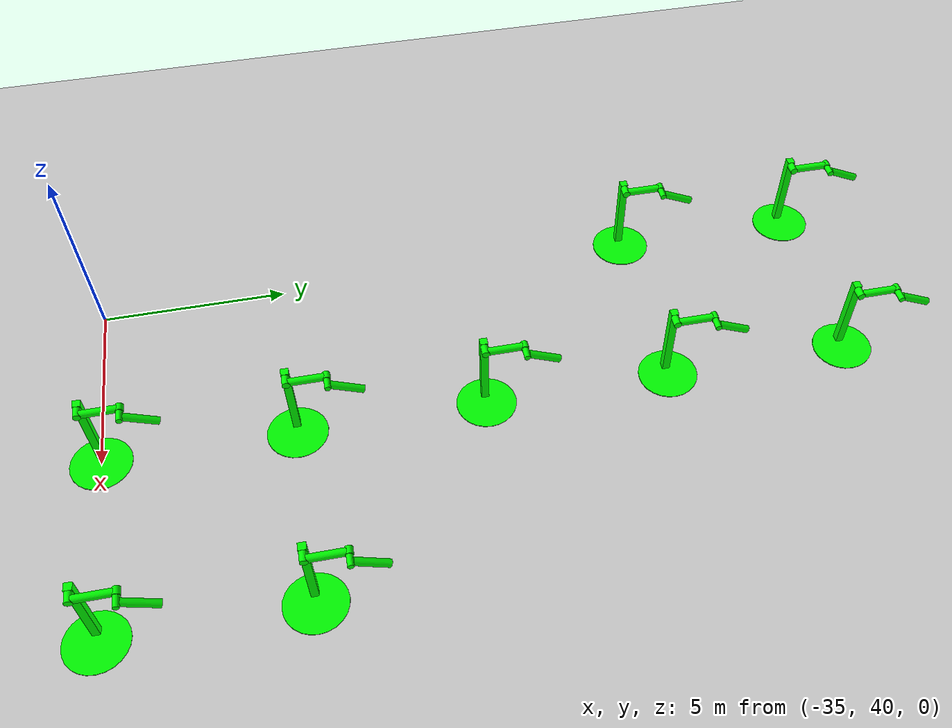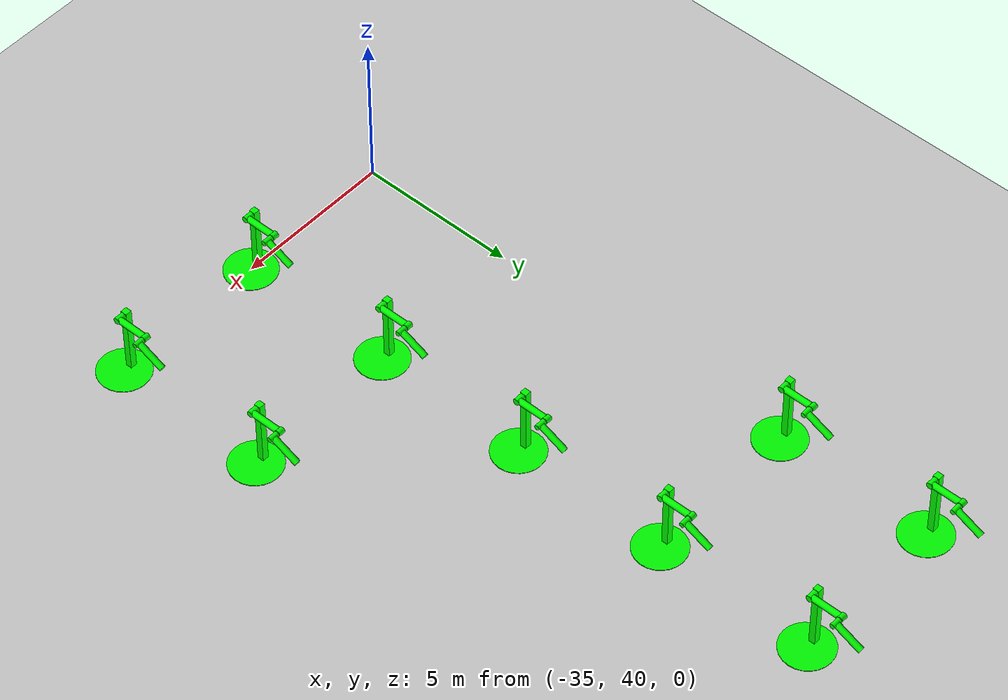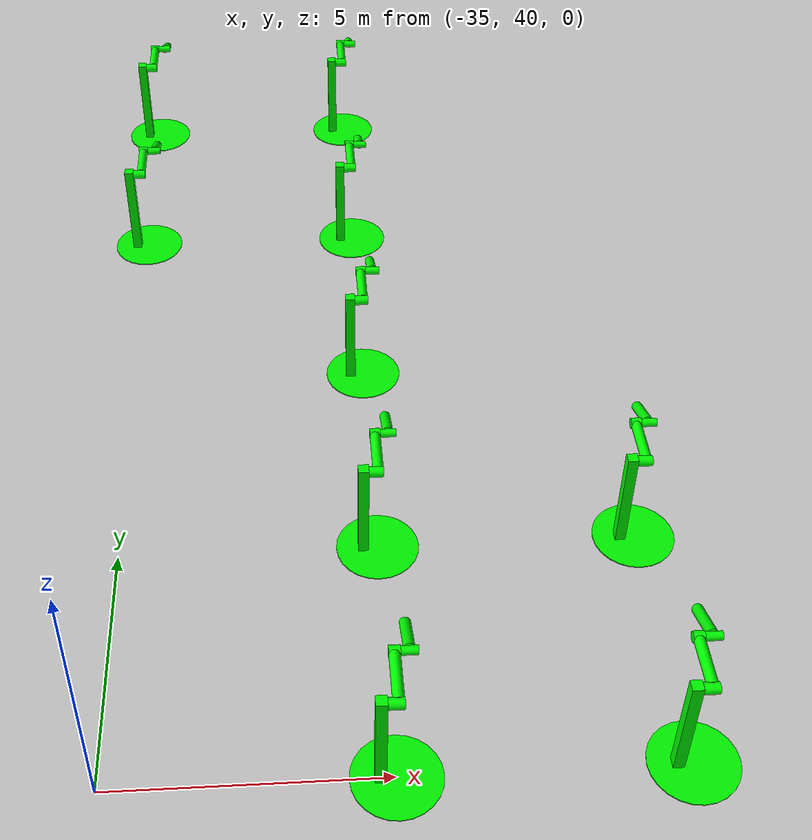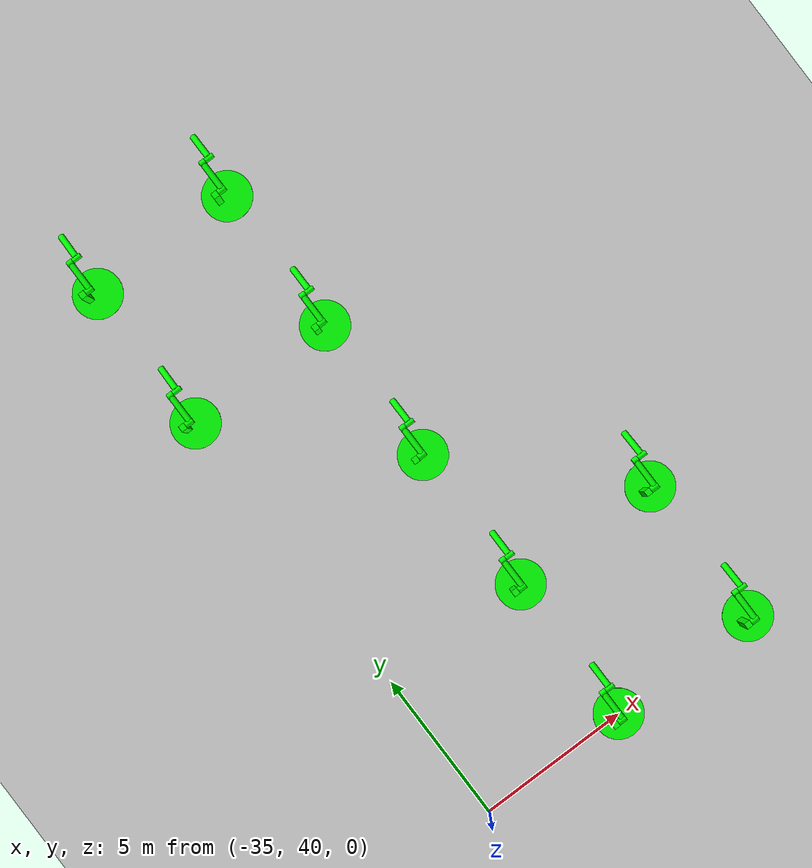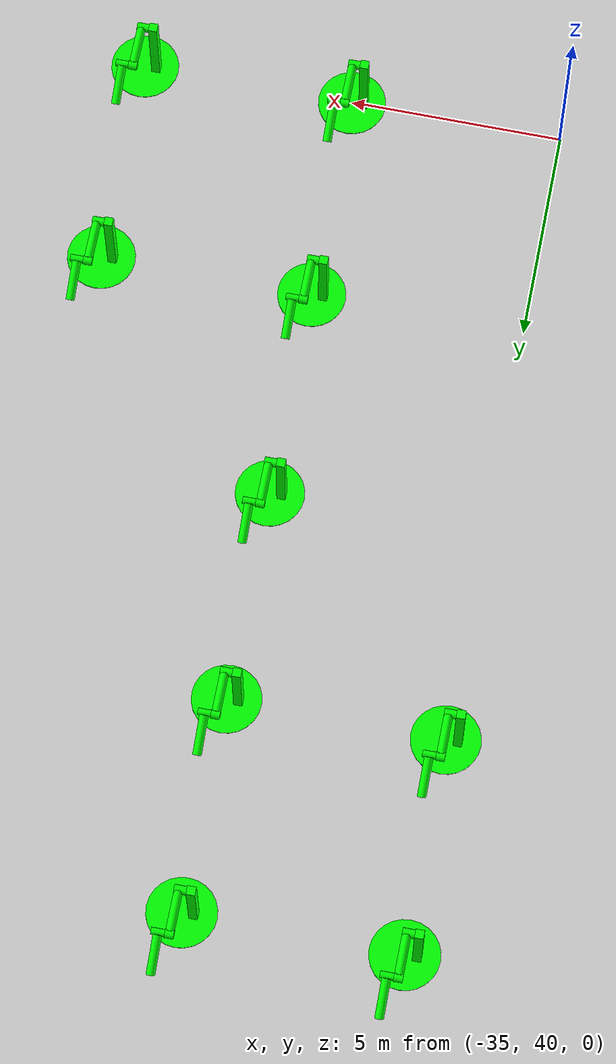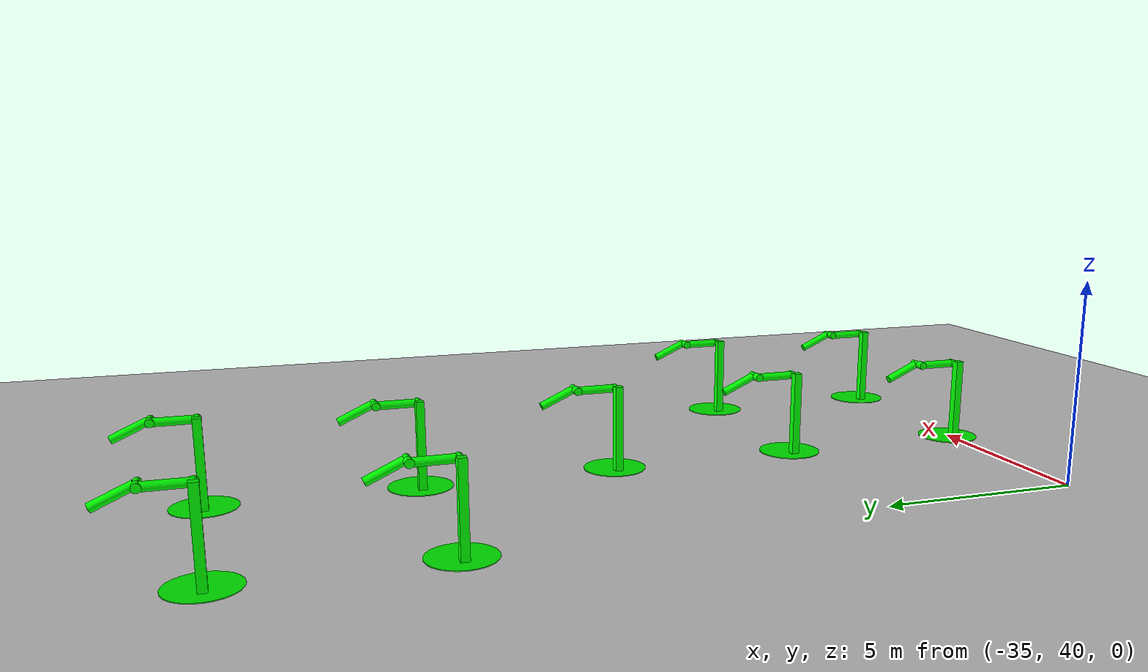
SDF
<sdf version="1.6">
 <world name="double_pendulums">
  <model name="ground_plane">
   <static>true</static>
   <link name="link">
    <collision name="collision">
     <geometry><plane><normal>0 0 1</normal><size>100 100</size></plane></geometry>
    </collision>
    <visual name="visual">
     <geometry><plane><normal>0 0 1</normal><size>100 100</size></plane></geometry>
     <material>
      <ambient>0.8 0.8 0.8 1</ambient>
      <diffuse>0.8 0.8 0.8 1</diffuse>
      <specular>0.8 0.8 0.8 1</specular>
     </material>
    </visual>
   </link>
  </model>
  <model name="dbl_pendulum_204">
   <pose>-30 40 0 0 0 0</pose>
   <link name="base">
    <inertial><mass>100</mass></inertial>
    <visual name="vis_plate_on_ground">
     <pose>0 0 0.01 0 0 0</pose>
     <geometry><cylinder><radius>0.8</radius><length>0.02</length></cylinder></geometry>
     <material><ambient>0 1 0 1</ambient><diffuse>0 1 0 1</diffuse><specular>0 1 0 1</specular></material>
    </visual>
    <visual name="vis_pole">
     <pose>-0.275 0 1.1 0 0 0</pose>
     <geometry><box><size>0.2 0.2 2.2</size></box></geometry>
     <material><ambient>0 1 0 1</ambient><diffuse>0 1 0 1</diffuse><specular>0 1 0 1</specular></material>
    </visual>
    <collision name="col_plate_on_ground">
     <pose>0 0 0.01 0 0 0</pose>
     <geometry><cylinder><radius>0.8</radius><length>0.02</length></cylinder></geometry>
    </collision>
    <collision name="col_pole">
     <pose>-0.275 0 1.1 0 0 0</pose>
     <geometry><box><size>0.2 0.2 2.2</size></box></geometry>
    </collision>
   </link>
   <link name="upper_link">
    <pose>0 0 2.1 -1.5708 0 0</pose>
    <inertial><pose>0 0 0.5 0 0 0</pose></inertial>
    <visual name="vis_upper_joint">
     <pose>-0.05 0 0 0 1.5708 0</pose>
     <geometry><cylinder><radius>0.1</radius><length>0.3</length></cylinder></geometry>
     <material><ambient>0 1 0 1</ambient><diffuse>0 1 0 1</diffuse><specular>0 1 0 1</specular></material>
    </visual>
    <visual name="vis_lower_joint">
     <pose>0 0 1.0 0 1.5708 0</pose>
     <geometry><cylinder><radius>0.1</radius><length>0.2</length></cylinder></geometry>
     <material><ambient>0 1 0 1</ambient><diffuse>0 1 0 1</diffuse><specular>0 1 0 1</specular></material>
    </visual>
    <visual name="vis_cylinder">
     <pose>0 0 0.5 0 0 0</pose>
     <geometry><cylinder><radius>0.1</radius><length>0.9</length></cylinder></geometry>
     <material><ambient>0 1 0 1</ambient><diffuse>0 1 0 1</diffuse><specular>0 1 0 1</specular></material>
    </visual>
    <collision name="col_upper_joint">
     <pose>-0.05 0 0 0 1.5708 0</pose>
     <geometry><cylinder><radius>0.1</radius><length>0.3</length></cylinder></geometry>
    </collision>
    <collision name="col_lower_joint">
     <pose>0 0 1.0 0 1.5708 0</pose>
     <geometry><cylinder><radius>0.1</radius><length>0.2</length></cylinder></geometry>
    </collision>
    <collision name="col_cylinder">
     <pose>0 0 0.5 0 0 0</pose>
     <geometry><cylinder><radius>0.1</radius><length>0.9</length></cylinder></geometry>
    </collision>
   </link>
   <link name="lower_link">
    <pose>0.25 1.0 2.1 -2 0 0</pose>
    <inertial><pose>0 0 0.5 0 0 0</pose></inertial>
    <visual name="vis_lower_joint">
     <pose>0 0 0 0 1.5708 0</pose>
     <geometry><cylinder><radius>0.08</radius><length>0.3</length></cylinder></geometry>
     <material><ambient>0 1 0 1</ambient><diffuse>0 1 0 1</diffuse><specular>0 1 0 1</specular></material>
    </visual>
    <visual name="vis_cylinder">
     <pose>0 0 0.5 0 0 0</pose>
     <geometry><cylinder><radius>0.1</radius><length>0.9</length></cylinder></geometry>
     <material><ambient>0 1 0 1</ambient><diffuse>0 1 0 1</diffuse><specular>0 1 0 1</specular></material>
    </visual>
    <collision name="col_lower_joint">
     <pose>0 0 0 0 1.5708 0</pose>
     <geometry><cylinder><radius>0.08</radius><length>0.3</length></cylinder></geometry>
    </collision>
    <collision name="col_cylinder">
     <pose>0 0 0.5 0 0 0</pose>
     <geometry><cylinder><radius>0.1</radius><length>0.9</length></cylinder></geometry>
    </collision>
   </link>
   <joint name="upper_joint" type="revolute">
    <parent>base</parent>
    <child>upper_link</child>
    <axis><xyz>1.0 0 0</xyz></axis>
   </joint>
   <joint name="lower_joint" type="revolute">
    <parent>upper_link</parent>
    <child>lower_link</child>
    <axis><xyz>1.0 0 0</xyz></axis>
   </joint>
  </model>
  <model name="dbl_pendulum_205">
   <pose>-25 40 0 0 0 0</pose>
   <link name="base">
    <inertial><mass>100</mass></inertial>
    <visual name="vis_plate_on_ground">
     <pose>0 0 0.01 0 0 0</pose>
     <geometry><cylinder><radius>0.8</radius><length>0.02</length></cylinder></geometry>
     <material><ambient>0 1 0 1</ambient><diffuse>0 1 0 1</diffuse><specular>0 1 0 1</specular></material>
    </visual>
    <visual name="vis_pole">
     <pose>-0.275 0 1.1 0 0 0</pose>
     <geometry><box><size>0.2 0.2 2.2</size></box></geometry>
     <material><ambient>0 1 0 1</ambient><diffuse>0 1 0 1</diffuse><specular>0 1 0 1</specular></material>
    </visual>
    <collision name="col_plate_on_ground">
     <pose>0 0 0.01 0 0 0</pose>
     <geometry><cylinder><radius>0.8</radius><length>0.02</length></cylinder></geometry>
    </collision>
    <collision name="col_pole">
     <pose>-0.275 0 1.1 0 0 0</pose>
     <geometry><box><size>0.2 0.2 2.2</size></box></geometry>
    </collision>
   </link>
   <link name="upper_link">
    <pose>0 0 2.1 -1.5708 0 0</pose>
    <inertial><pose>0 0 0.5 0 0 0</pose></inertial>
    <visual name="vis_upper_joint">
     <pose>-0.05 0 0 0 1.5708 0</pose>
     <geometry><cylinder><radius>0.1</radius><length>0.3</length></cylinder></geometry>
     <material><ambient>0 1 0 1</ambient><diffuse>0 1 0 1</diffuse><specular>0 1 0 1</specular></material>
    </visual>
    <visual name="vis_lower_joint">
     <pose>0 0 1.0 0 1.5708 0</pose>
     <geometry><cylinder><radius>0.1</radius><length>0.2</length></cylinder></geometry>
     <material><ambient>0 1 0 1</ambient><diffuse>0 1 0 1</diffuse><specular>0 1 0 1</specular></material>
    </visual>
    <visual name="vis_cylinder">
     <pose>0 0 0.5 0 0 0</pose>
     <geometry><cylinder><radius>0.1</radius><length>0.9</length></cylinder></geometry>
     <material><ambient>0 1 0 1</ambient><diffuse>0 1 0 1</diffuse><specular>0 1 0 1</specular></material>
    </visual>
    <collision name="col_upper_joint">
     <pose>-0.05 0 0 0 1.5708 0</pose>
     <geometry><cylinder><radius>0.1</radius><length>0.3</length></cylinder></geometry>
    </collision>
    <collision name="col_lower_joint">
     <pose>0 0 1.0 0 1.5708 0</pose>
     <geometry><cylinder><radius>0.1</radius><length>0.2</length></cylinder></geometry>
    </collision>
    <collision name="col_cylinder">
     <pose>0 0 0.5 0 0 0</pose>
     <geometry><cylinder><radius>0.1</radius><length>0.9</length></cylinder></geometry>
    </collision>
   </link>
   <link name="lower_link">
    <pose>0.25 1.0 2.1 -2 0 0</pose>
    <inertial><pose>0 0 0.5 0 0 0</pose></inertial>
    <visual name="vis_lower_joint">
     <pose>0 0 0 0 1.5708 0</pose>
     <geometry><cylinder><radius>0.08</radius><length>0.3</length></cylinder></geometry>
     <material><ambient>0 1 0 1</ambient><diffuse>0 1 0 1</diffuse><specular>0 1 0 1</specular></material>
    </visual>
    <visual name="vis_cylinder">
     <pose>0 0 0.5 0 0 0</pose>
     <geometry><cylinder><radius>0.1</radius><length>0.9</length></cylinder></geometry>
     <material><ambient>0 1 0 1</ambient><diffuse>0 1 0 1</diffuse><specular>0 1 0 1</specular></material>
    </visual>
    <collision name="col_lower_joint">
     <pose>0 0 0 0 1.5708 0</pose>
     <geometry><cylinder><radius>0.08</radius><length>0.3</length></cylinder></geometry>
    </collision>
    <collision name="col_cylinder">
     <pose>0 0 0.5 0 0 0</pose>
     <geometry><cylinder><radius>0.1</radius><length>0.9</length></cylinder></geometry>
    </collision>
   </link>
   <joint name="upper_joint" type="revolute">
    <parent>base</parent>
    <child>upper_link</child>
    <axis><xyz>1.0 0 0</xyz></axis>
   </joint>
   <joint name="lower_joint" type="revolute">
    <parent>upper_link</parent>
    <child>lower_link</child>
    <axis><xyz>1.0 0 0</xyz></axis>
   </joint>
  </model>
  <model name="dbl_pendulum_229">
   <pose>-30 45 0 0 0 0</pose>
   <link name="base">
    <inertial><mass>100</mass></inertial>
    <visual name="vis_plate_on_ground">
     <pose>0 0 0.01 0 0 0</pose>
     <geometry><cylinder><radius>0.8</radius><length>0.02</length></cylinder></geometry>
     <material><ambient>0 1 0 1</ambient><diffuse>0 1 0 1</diffuse><specular>0 1 0 1</specular></material>
    </visual>
    <visual name="vis_pole">
     <pose>-0.275 0 1.1 0 0 0</pose>
     <geometry><box><size>0.2 0.2 2.2</size></box></geometry>
     <material><ambient>0 1 0 1</ambient><diffuse>0 1 0 1</diffuse><specular>0 1 0 1</specular></material>
    </visual>
    <collision name="col_plate_on_ground">
     <pose>0 0 0.01 0 0 0</pose>
     <geometry><cylinder><radius>0.8</radius><length>0.02</length></cylinder></geometry>
    </collision>
    <collision name="col_pole">
     <pose>-0.275 0 1.1 0 0 0</pose>
     <geometry><box><size>0.2 0.2 2.2</size></box></geometry>
    </collision>
   </link>
   <link name="upper_link">
    <pose>0 0 2.1 -1.5708 0 0</pose>
    <inertial><pose>0 0 0.5 0 0 0</pose></inertial>
    <visual name="vis_upper_joint">
     <pose>-0.05 0 0 0 1.5708 0</pose>
     <geometry><cylinder><radius>0.1</radius><length>0.3</length></cylinder></geometry>
     <material><ambient>0 1 0 1</ambient><diffuse>0 1 0 1</diffuse><specular>0 1 0 1</specular></material>
    </visual>
    <visual name="vis_lower_joint">
     <pose>0 0 1.0 0 1.5708 0</pose>
     <geometry><cylinder><radius>0.1</radius><length>0.2</length></cylinder></geometry>
     <material><ambient>0 1 0 1</ambient><diffuse>0 1 0 1</diffuse><specular>0 1 0 1</specular></material>
    </visual>
    <visual name="vis_cylinder">
     <pose>0 0 0.5 0 0 0</pose>
     <geometry><cylinder><radius>0.1</radius><length>0.9</length></cylinder></geometry>
     <material><ambient>0 1 0 1</ambient><diffuse>0 1 0 1</diffuse><specular>0 1 0 1</specular></material>
    </visual>
    <collision name="col_upper_joint">
     <pose>-0.05 0 0 0 1.5708 0</pose>
     <geometry><cylinder><radius>0.1</radius><length>0.3</length></cylinder></geometry>
    </collision>
    <collision name="col_lower_joint">
     <pose>0 0 1.0 0 1.5708 0</pose>
     <geometry><cylinder><radius>0.1</radius><length>0.2</length></cylinder></geometry>
    </collision>
    <collision name="col_cylinder">
     <pose>0 0 0.5 0 0 0</pose>
     <geometry><cylinder><radius>0.1</radius><length>0.9</length></cylinder></geometry>
    </collision>
   </link>
   <link name="lower_link">
    <pose>0.25 1.0 2.1 -2 0 0</pose>
    <inertial><pose>0 0 0.5 0 0 0</pose></inertial>
    <visual name="vis_lower_joint">
     <pose>0 0 0 0 1.5708 0</pose>
     <geometry><cylinder><radius>0.08</radius><length>0.3</length></cylinder></geometry>
     <material><ambient>0 1 0 1</ambient><diffuse>0 1 0 1</diffuse><specular>0 1 0 1</specular></material>
    </visual>
    <visual name="vis_cylinder">
     <pose>0 0 0.5 0 0 0</pose>
     <geometry><cylinder><radius>0.1</radius><length>0.9</length></cylinder></geometry>
     <material><ambient>0 1 0 1</ambient><diffuse>0 1 0 1</diffuse><specular>0 1 0 1</specular></material>
    </visual>
    <collision name="col_lower_joint">
     <pose>0 0 0 0 1.5708 0</pose>
     <geometry><cylinder><radius>0.08</radius><length>0.3</length></cylinder></geometry>
    </collision>
    <collision name="col_cylinder">
     <pose>0 0 0.5 0 0 0</pose>
     <geometry><cylinder><radius>0.1</radius><length>0.9</length></cylinder></geometry>
    </collision>
   </link>
   <joint name="upper_joint" type="revolute">
    <parent>base</parent>
    <child>upper_link</child>
    <axis><xyz>1.0 0 0</xyz></axis>
   </joint>
   <joint name="lower_joint" type="revolute">
    <parent>upper_link</parent>
    <child>lower_link</child>
    <axis><xyz>1.0 0 0</xyz></axis>
   </joint>
  </model>
  <model name="dbl_pendulum_230">
   <pose>-25 45 0 0 0 0</pose>
   <link name="base">
    <inertial><mass>100</mass></inertial>
    <visual name="vis_plate_on_ground">
     <pose>0 0 0.01 0 0 0</pose>
     <geometry><cylinder><radius>0.8</radius><length>0.02</length></cylinder></geometry>
     <material><ambient>0 1 0 1</ambient><diffuse>0 1 0 1</diffuse><specular>0 1 0 1</specular></material>
    </visual>
    <visual name="vis_pole">
     <pose>-0.275 0 1.1 0 0 0</pose>
     <geometry><box><size>0.2 0.2 2.2</size></box></geometry>
     <material><ambient>0 1 0 1</ambient><diffuse>0 1 0 1</diffuse><specular>0 1 0 1</specular></material>
    </visual>
    <collision name="col_plate_on_ground">
     <pose>0 0 0.01 0 0 0</pose>
     <geometry><cylinder><radius>0.8</radius><length>0.02</length></cylinder></geometry>
    </collision>
    <collision name="col_pole">
     <pose>-0.275 0 1.1 0 0 0</pose>
     <geometry><box><size>0.2 0.2 2.2</size></box></geometry>
    </collision>
   </link>
   <link name="upper_link">
    <pose>0 0 2.1 -1.5708 0 0</pose>
    <inertial><pose>0 0 0.5 0 0 0</pose></inertial>
    <visual name="vis_upper_joint">
     <pose>-0.05 0 0 0 1.5708 0</pose>
     <geometry><cylinder><radius>0.1</radius><length>0.3</length></cylinder></geometry>
     <material><ambient>0 1 0 1</ambient><diffuse>0 1 0 1</diffuse><specular>0 1 0 1</specular></material>
    </visual>
    <visual name="vis_lower_joint">
     <pose>0 0 1.0 0 1.5708 0</pose>
     <geometry><cylinder><radius>0.1</radius><length>0.2</length></cylinder></geometry>
     <material><ambient>0 1 0 1</ambient><diffuse>0 1 0 1</diffuse><specular>0 1 0 1</specular></material>
    </visual>
    <visual name="vis_cylinder">
     <pose>0 0 0.5 0 0 0</pose>
     <geometry><cylinder><radius>0.1</radius><length>0.9</length></cylinder></geometry>
     <material><ambient>0 1 0 1</ambient><diffuse>0 1 0 1</diffuse><specular>0 1 0 1</specular></material>
    </visual>
    <collision name="col_upper_joint">
     <pose>-0.05 0 0 0 1.5708 0</pose>
     <geometry><cylinder><radius>0.1</radius><length>0.3</length></cylinder></geometry>
    </collision>
    <collision name="col_lower_joint">
     <pose>0 0 1.0 0 1.5708 0</pose>
     <geometry><cylinder><radius>0.1</radius><length>0.2</length></cylinder></geometry>
    </collision>
    <collision name="col_cylinder">
     <pose>0 0 0.5 0 0 0</pose>
     <geometry><cylinder><radius>0.1</radius><length>0.9</length></cylinder></geometry>
    </collision>
   </link>
   <link name="lower_link">
    <pose>0.25 1.0 2.1 -2 0 0</pose>
    <inertial><pose>0 0 0.5 0 0 0</pose></inertial>
    <visual name="vis_lower_joint">
     <pose>0 0 0 0 1.5708 0</pose>
     <geometry><cylinder><radius>0.08</radius><length>0.3</length></cylinder></geometry>
     <material><ambient>0 1 0 1</ambient><diffuse>0 1 0 1</diffuse><specular>0 1 0 1</specular></material>
    </visual>
    <visual name="vis_cylinder">
     <pose>0 0 0.5 0 0 0</pose>
     <geometry><cylinder><radius>0.1</radius><length>0.9</length></cylinder></geometry>
     <material><ambient>0 1 0 1</ambient><diffuse>0 1 0 1</diffuse><specular>0 1 0 1</specular></material>
    </visual>
    <collision name="col_lower_joint">
     <pose>0 0 0 0 1.5708 0</pose>
     <geometry><cylinder><radius>0.08</radius><length>0.3</length></cylinder></geometry>
    </collision>
    <collision name="col_cylinder">
     <pose>0 0 0.5 0 0 0</pose>
     <geometry><cylinder><radius>0.1</radius><length>0.9</length></cylinder></geometry>
    </collision>
   </link>
   <joint name="upper_joint" type="revolute">
    <parent>base</parent>
    <child>upper_link</child>
    <axis><xyz>1.0 0 0</xyz></axis>
   </joint>
   <joint name="lower_joint" type="revolute">
    <parent>upper_link</parent>
    <child>lower_link</child>
    <axis><xyz>1.0 0 0</xyz></axis>
   </joint>
  </model>
  <model name="dbl_pendulum_254">
   <pose>-30 50 0 0 0 0</pose>
   <link name="base">
    <inertial><mass>100</mass></inertial>
    <visual name="vis_plate_on_ground">
     <pose>0 0 0.01 0 0 0</pose>
     <geometry><cylinder><radius>0.8</radius><length>0.02</length></cylinder></geometry>
     <material><ambient>0 1 0 1</ambient><diffuse>0 1 0 1</diffuse><specular>0 1 0 1</specular></material>
    </visual>
    <visual name="vis_pole">
     <pose>-0.275 0 1.1 0 0 0</pose>
     <geometry><box><size>0.2 0.2 2.2</size></box></geometry>
     <material><ambient>0 1 0 1</ambient><diffuse>0 1 0 1</diffuse><specular>0 1 0 1</specular></material>
    </visual>
    <collision name="col_plate_on_ground">
     <pose>0 0 0.01 0 0 0</pose>
     <geometry><cylinder><radius>0.8</radius><length>0.02</length></cylinder></geometry>
    </collision>
    <collision name="col_pole">
     <pose>-0.275 0 1.1 0 0 0</pose>
     <geometry><box><size>0.2 0.2 2.2</size></box></geometry>
    </collision>
   </link>
   <link name="upper_link">
    <pose>0 0 2.1 -1.5708 0 0</pose>
    <inertial><pose>0 0 0.5 0 0 0</pose></inertial>
    <visual name="vis_upper_joint">
     <pose>-0.05 0 0 0 1.5708 0</pose>
     <geometry><cylinder><radius>0.1</radius><length>0.3</length></cylinder></geometry>
     <material><ambient>0 1 0 1</ambient><diffuse>0 1 0 1</diffuse><specular>0 1 0 1</specular></material>
    </visual>
    <visual name="vis_lower_joint">
     <pose>0 0 1.0 0 1.5708 0</pose>
     <geometry><cylinder><radius>0.1</radius><length>0.2</length></cylinder></geometry>
     <material><ambient>0 1 0 1</ambient><diffuse>0 1 0 1</diffuse><specular>0 1 0 1</specular></material>
    </visual>
    <visual name="vis_cylinder">
     <pose>0 0 0.5 0 0 0</pose>
     <geometry><cylinder><radius>0.1</radius><length>0.9</length></cylinder></geometry>
     <material><ambient>0 1 0 1</ambient><diffuse>0 1 0 1</diffuse><specular>0 1 0 1</specular></material>
    </visual>
    <collision name="col_upper_joint">
     <pose>-0.05 0 0 0 1.5708 0</pose>
     <geometry><cylinder><radius>0.1</radius><length>0.3</length></cylinder></geometry>
    </collision>
    <collision name="col_lower_joint">
     <pose>0 0 1.0 0 1.5708 0</pose>
     <geometry><cylinder><radius>0.1</radius><length>0.2</length></cylinder></geometry>
    </collision>
    <collision name="col_cylinder">
     <pose>0 0 0.5 0 0 0</pose>
     <geometry><cylinder><radius>0.1</radius><length>0.9</length></cylinder></geometry>
    </collision>
   </link>
   <link name="lower_link">
    <pose>0.25 1.0 2.1 -2 0 0</pose>
    <inertial><pose>0 0 0.5 0 0 0</pose></inertial>
    <visual name="vis_lower_joint">
     <pose>0 0 0 0 1.5708 0</pose>
     <geometry><cylinder><radius>0.08</radius><length>0.3</length></cylinder></geometry>
     <material><ambient>0 1 0 1</ambient><diffuse>0 1 0 1</diffuse><specular>0 1 0 1</specular></material>
    </visual>
    <visual name="vis_cylinder">
     <pose>0 0 0.5 0 0 0</pose>
     <geometry><cylinder><radius>0.1</radius><length>0.9</length></cylinder></geometry>
     <material><ambient>0 1 0 1</ambient><diffuse>0 1 0 1</diffuse><specular>0 1 0 1</specular></material>
    </visual>
    <collision name="col_lower_joint">
     <pose>0 0 0 0 1.5708 0</pose>
     <geometry><cylinder><radius>0.08</radius><length>0.3</length></cylinder></geometry>
    </collision>
    <collision name="col_cylinder">
     <pose>0 0 0.5 0 0 0</pose>
     <geometry><cylinder><radius>0.1</radius><length>0.9</length></cylinder></geometry>
    </collision>
   </link>
   <joint name="upper_joint" type="revolute">
    <parent>base</parent>
    <child>upper_link</child>
    <axis><xyz>1.0 0 0</xyz></axis>
   </joint>
   <joint name="lower_joint" type="revolute">
    <parent>upper_link</parent>
    <child>lower_link</child>
    <axis><xyz>1.0 0 0</xyz></axis>
   </joint>
  </model>
  <model name="dbl_pendulum_278">
   <pose>-35 55 0 0 0 0</pose>
   <link name="base">
    <inertial><mass>100</mass></inertial>
    <visual name="vis_plate_on_ground">
     <pose>0 0 0.01 0 0 0</pose>
     <geometry><cylinder><radius>0.8</radius><length>0.02</length></cylinder></geometry>
     <material><ambient>0 1 0 1</ambient><diffuse>0 1 0 1</diffuse><specular>0 1 0 1</specular></material>
    </visual>
    <visual name="vis_pole">
     <pose>-0.275 0 1.1 0 0 0</pose>
     <geometry><box><size>0.2 0.2 2.2</size></box></geometry>
     <material><ambient>0 1 0 1</ambient><diffuse>0 1 0 1</diffuse><specular>0 1 0 1</specular></material>
    </visual>
    <collision name="col_plate_on_ground">
     <pose>0 0 0.01 0 0 0</pose>
     <geometry><cylinder><radius>0.8</radius><length>0.02</length></cylinder></geometry>
    </collision>
    <collision name="col_pole">
     <pose>-0.275 0 1.1 0 0 0</pose>
     <geometry><box><size>0.2 0.2 2.2</size></box></geometry>
    </collision>
   </link>
   <link name="upper_link">
    <pose>0 0 2.1 -1.5708 0 0</pose>
    <inertial><pose>0 0 0.5 0 0 0</pose></inertial>
    <visual name="vis_upper_joint">
     <pose>-0.05 0 0 0 1.5708 0</pose>
     <geometry><cylinder><radius>0.1</radius><length>0.3</length></cylinder></geometry>
     <material><ambient>0 1 0 1</ambient><diffuse>0 1 0 1</diffuse><specular>0 1 0 1</specular></material>
    </visual>
    <visual name="vis_lower_joint">
     <pose>0 0 1.0 0 1.5708 0</pose>
     <geometry><cylinder><radius>0.1</radius><length>0.2</length></cylinder></geometry>
     <material><ambient>0 1 0 1</ambient><diffuse>0 1 0 1</diffuse><specular>0 1 0 1</specular></material>
    </visual>
    <visual name="vis_cylinder">
     <pose>0 0 0.5 0 0 0</pose>
     <geometry><cylinder><radius>0.1</radius><length>0.9</length></cylinder></geometry>
     <material><ambient>0 1 0 1</ambient><diffuse>0 1 0 1</diffuse><specular>0 1 0 1</specular></material>
    </visual>
    <collision name="col_upper_joint">
     <pose>-0.05 0 0 0 1.5708 0</pose>
     <geometry><cylinder><radius>0.1</radius><length>0.3</length></cylinder></geometry>
    </collision>
    <collision name="col_lower_joint">
     <pose>0 0 1.0 0 1.5708 0</pose>
     <geometry><cylinder><radius>0.1</radius><length>0.2</length></cylinder></geometry>
    </collision>
    <collision name="col_cylinder">
     <pose>0 0 0.5 0 0 0</pose>
     <geometry><cylinder><radius>0.1</radius><length>0.9</length></cylinder></geometry>
    </collision>
   </link>
   <link name="lower_link">
    <pose>0.25 1.0 2.1 -2 0 0</pose>
    <inertial><pose>0 0 0.5 0 0 0</pose></inertial>
    <visual name="vis_lower_joint">
     <pose>0 0 0 0 1.5708 0</pose>
     <geometry><cylinder><radius>0.08</radius><length>0.3</length></cylinder></geometry>
     <material><ambient>0 1 0 1</ambient><diffuse>0 1 0 1</diffuse><specular>0 1 0 1</specular></material>
    </visual>
    <visual name="vis_cylinder">
     <pose>0 0 0.5 0 0 0</pose>
     <geometry><cylinder><radius>0.1</radius><length>0.9</length></cylinder></geometry>
     <material><ambient>0 1 0 1</ambient><diffuse>0 1 0 1</diffuse><specular>0 1 0 1</specular></material>
    </visual>
    <collision name="col_lower_joint">
     <pose>0 0 0 0 1.5708 0</pose>
     <geometry><cylinder><radius>0.08</radius><length>0.3</length></cylinder></geometry>
    </collision>
    <collision name="col_cylinder">
     <pose>0 0 0.5 0 0 0</pose>
     <geometry><cylinder><radius>0.1</radius><length>0.9</length></cylinder></geometry>
    </collision>
   </link>
   <joint name="upper_joint" type="revolute">
    <parent>base</parent>
    <child>upper_link</child>
    <axis><xyz>1.0 0 0</xyz></axis>
   </joint>
   <joint name="lower_joint" type="revolute">
    <parent>upper_link</parent>
    <child>lower_link</child>
    <axis><xyz>1.0 0 0</xyz></axis>
   </joint>
  </model>
  <model name="dbl_pendulum_279">
   <pose>-30 55 0 0 0 0</pose>
   <link name="base">
    <inertial><mass>100</mass></inertial>
    <visual name="vis_plate_on_ground">
     <pose>0 0 0.01 0 0 0</pose>
     <geometry><cylinder><radius>0.8</radius><length>0.02</length></cylinder></geometry>
     <material><ambient>0 1 0 1</ambient><diffuse>0 1 0 1</diffuse><specular>0 1 0 1</specular></material>
    </visual>
    <visual name="vis_pole">
     <pose>-0.275 0 1.1 0 0 0</pose>
     <geometry><box><size>0.2 0.2 2.2</size></box></geometry>
     <material><ambient>0 1 0 1</ambient><diffuse>0 1 0 1</diffuse><specular>0 1 0 1</specular></material>
    </visual>
    <collision name="col_plate_on_ground">
     <pose>0 0 0.01 0 0 0</pose>
     <geometry><cylinder><radius>0.8</radius><length>0.02</length></cylinder></geometry>
    </collision>
    <collision name="col_pole">
     <pose>-0.275 0 1.1 0 0 0</pose>
     <geometry><box><size>0.2 0.2 2.2</size></box></geometry>
    </collision>
   </link>
   <link name="upper_link">
    <pose>0 0 2.1 -1.5708 0 0</pose>
    <inertial><pose>0 0 0.5 0 0 0</pose></inertial>
    <visual name="vis_upper_joint">
     <pose>-0.05 0 0 0 1.5708 0</pose>
     <geometry><cylinder><radius>0.1</radius><length>0.3</length></cylinder></geometry>
     <material><ambient>0 1 0 1</ambient><diffuse>0 1 0 1</diffuse><specular>0 1 0 1</specular></material>
    </visual>
    <visual name="vis_lower_joint">
     <pose>0 0 1.0 0 1.5708 0</pose>
     <geometry><cylinder><radius>0.1</radius><length>0.2</length></cylinder></geometry>
     <material><ambient>0 1 0 1</ambient><diffuse>0 1 0 1</diffuse><specular>0 1 0 1</specular></material>
    </visual>
    <visual name="vis_cylinder">
     <pose>0 0 0.5 0 0 0</pose>
     <geometry><cylinder><radius>0.1</radius><length>0.9</length></cylinder></geometry>
     <material><ambient>0 1 0 1</ambient><diffuse>0 1 0 1</diffuse><specular>0 1 0 1</specular></material>
    </visual>
    <collision name="col_upper_joint">
     <pose>-0.05 0 0 0 1.5708 0</pose>
     <geometry><cylinder><radius>0.1</radius><length>0.3</length></cylinder></geometry>
    </collision>
    <collision name="col_lower_joint">
     <pose>0 0 1.0 0 1.5708 0</pose>
     <geometry><cylinder><radius>0.1</radius><length>0.2</length></cylinder></geometry>
    </collision>
    <collision name="col_cylinder">
     <pose>0 0 0.5 0 0 0</pose>
     <geometry><cylinder><radius>0.1</radius><length>0.9</length></cylinder></geometry>
    </collision>
   </link>
   <link name="lower_link">
    <pose>0.25 1.0 2.1 -2 0 0</pose>
    <inertial><pose>0 0 0.5 0 0 0</pose></inertial>
    <visual name="vis_lower_joint">
     <pose>0 0 0 0 1.5708 0</pose>
     <geometry><cylinder><radius>0.08</radius><length>0.3</length></cylinder></geometry>
     <material><ambient>0 1 0 1</ambient><diffuse>0 1 0 1</diffuse><specular>0 1 0 1</specular></material>
    </visual>
    <visual name="vis_cylinder">
     <pose>0 0 0.5 0 0 0</pose>
     <geometry><cylinder><radius>0.1</radius><length>0.9</length></cylinder></geometry>
     <material><ambient>0 1 0 1</ambient><diffuse>0 1 0 1</diffuse><specular>0 1 0 1</specular></material>
    </visual>
    <collision name="col_lower_joint">
     <pose>0 0 0 0 1.5708 0</pose>
     <geometry><cylinder><radius>0.08</radius><length>0.3</length></cylinder></geometry>
    </collision>
    <collision name="col_cylinder">
     <pose>0 0 0.5 0 0 0</pose>
     <geometry><cylinder><radius>0.1</radius><length>0.9</length></cylinder></geometry>
    </collision>
   </link>
   <joint name="upper_joint" type="revolute">
    <parent>base</parent>
    <child>upper_link</child>
    <axis><xyz>1.0 0 0</xyz></axis>
   </joint>
   <joint name="lower_joint" type="revolute">
    <parent>upper_link</parent>
    <child>lower_link</child>
    <axis><xyz>1.0 0 0</xyz></axis>
   </joint>
  </model>
  <model name="dbl_pendulum_303">
   <pose>-35 60 0 0 0 0</pose>
   <link name="base">
    <inertial><mass>100</mass></inertial>
    <visual name="vis_plate_on_ground">
     <pose>0 0 0.01 0 0 0</pose>
     <geometry><cylinder><radius>0.8</radius><length>0.02</length></cylinder></geometry>
     <material><ambient>0 1 0 1</ambient><diffuse>0 1 0 1</diffuse><specular>0 1 0 1</specular></material>
    </visual>
    <visual name="vis_pole">
     <pose>-0.275 0 1.1 0 0 0</pose>
     <geometry><box><size>0.2 0.2 2.2</size></box></geometry>
     <material><ambient>0 1 0 1</ambient><diffuse>0 1 0 1</diffuse><specular>0 1 0 1</specular></material>
    </visual>
    <collision name="col_plate_on_ground">
     <pose>0 0 0.01 0 0 0</pose>
     <geometry><cylinder><radius>0.8</radius><length>0.02</length></cylinder></geometry>
    </collision>
    <collision name="col_pole">
     <pose>-0.275 0 1.1 0 0 0</pose>
     <geometry><box><size>0.2 0.2 2.2</size></box></geometry>
    </collision>
   </link>
   <link name="upper_link">
    <pose>0 0 2.1 -1.5708 0 0</pose>
    <inertial><pose>0 0 0.5 0 0 0</pose></inertial>
    <visual name="vis_upper_joint">
     <pose>-0.05 0 0 0 1.5708 0</pose>
     <geometry><cylinder><radius>0.1</radius><length>0.3</length></cylinder></geometry>
     <material><ambient>0 1 0 1</ambient><diffuse>0 1 0 1</diffuse><specular>0 1 0 1</specular></material>
    </visual>
    <visual name="vis_lower_joint">
     <pose>0 0 1.0 0 1.5708 0</pose>
     <geometry><cylinder><radius>0.1</radius><length>0.2</length></cylinder></geometry>
     <material><ambient>0 1 0 1</ambient><diffuse>0 1 0 1</diffuse><specular>0 1 0 1</specular></material>
    </visual>
    <visual name="vis_cylinder">
     <pose>0 0 0.5 0 0 0</pose>
     <geometry><cylinder><radius>0.1</radius><length>0.9</length></cylinder></geometry>
     <material><ambient>0 1 0 1</ambient><diffuse>0 1 0 1</diffuse><specular>0 1 0 1</specular></material>
    </visual>
    <collision name="col_upper_joint">
     <pose>-0.05 0 0 0 1.5708 0</pose>
     <geometry><cylinder><radius>0.1</radius><length>0.3</length></cylinder></geometry>
    </collision>
    <collision name="col_lower_joint">
     <pose>0 0 1.0 0 1.5708 0</pose>
     <geometry><cylinder><radius>0.1</radius><length>0.2</length></cylinder></geometry>
    </collision>
    <collision name="col_cylinder">
     <pose>0 0 0.5 0 0 0</pose>
     <geometry><cylinder><radius>0.1</radius><length>0.9</length></cylinder></geometry>
    </collision>
   </link>
   <link name="lower_link">
    <pose>0.25 1.0 2.1 -2 0 0</pose>
    <inertial><pose>0 0 0.5 0 0 0</pose></inertial>
    <visual name="vis_lower_joint">
     <pose>0 0 0 0 1.5708 0</pose>
     <geometry><cylinder><radius>0.08</radius><length>0.3</length></cylinder></geometry>
     <material><ambient>0 1 0 1</ambient><diffuse>0 1 0 1</diffuse><specular>0 1 0 1</specular></material>
    </visual>
    <visual name="vis_cylinder">
     <pose>0 0 0.5 0 0 0</pose>
     <geometry><cylinder><radius>0.1</radius><length>0.9</length></cylinder></geometry>
     <material><ambient>0 1 0 1</ambient><diffuse>0 1 0 1</diffuse><specular>0 1 0 1</specular></material>
    </visual>
    <collision name="col_lower_joint">
     <pose>0 0 0 0 1.5708 0</pose>
     <geometry><cylinder><radius>0.08</radius><length>0.3</length></cylinder></geometry>
    </collision>
    <collision name="col_cylinder">
     <pose>0 0 0.5 0 0 0</pose>
     <geometry><cylinder><radius>0.1</radius><length>0.9</length></cylinder></geometry>
    </collision>
   </link>
   <joint name="upper_joint" type="revolute">
    <parent>base</parent>
    <child>upper_link</child>
    <axis><xyz>1.0 0 0</xyz></axis>
   </joint>
   <joint name="lower_joint" type="revolute">
    <parent>upper_link</parent>
    <child>lower_link</child>
    <axis><xyz>1.0 0 0</xyz></axis>
   </joint>
  </model>
  <model name="dbl_pendulum_304">
   <pose>-30 60 0 0 0 0</pose>
   <link name="base">
    <inertial><mass>100</mass></inertial>
    <visual name="vis_plate_on_ground">
     <pose>0 0 0.01 0 0 0</pose>
     <geometry><cylinder><radius>0.8</radius><length>0.02</length></cylinder></geometry>
     <material><ambient>0 1 0 1</ambient><diffuse>0 1 0 1</diffuse><specular>0 1 0 1</specular></material>
    </visual>
    <visual name="vis_pole">
     <pose>-0.275 0 1.1 0 0 0</pose>
     <geometry><box><size>0.2 0.2 2.2</size></box></geometry>
     <material><ambient>0 1 0 1</ambient><diffuse>0 1 0 1</diffuse><specular>0 1 0 1</specular></material>
    </visual>
    <collision name="col_plate_on_ground">
     <pose>0 0 0.01 0 0 0</pose>
     <geometry><cylinder><radius>0.8</radius><length>0.02</length></cylinder></geometry>
    </collision>
    <collision name="col_pole">
     <pose>-0.275 0 1.1 0 0 0</pose>
     <geometry><box><size>0.2 0.2 2.2</size></box></geometry>
    </collision>
   </link>
   <link name="upper_link">
    <pose>0 0 2.1 -1.5708 0 0</pose>
    <inertial><pose>0 0 0.5 0 0 0</pose></inertial>
    <visual name="vis_upper_joint">
     <pose>-0.05 0 0 0 1.5708 0</pose>
     <geometry><cylinder><radius>0.1</radius><length>0.3</length></cylinder></geometry>
     <material><ambient>0 1 0 1</ambient><diffuse>0 1 0 1</diffuse><specular>0 1 0 1</specular></material>
    </visual>
    <visual name="vis_lower_joint">
     <pose>0 0 1.0 0 1.5708 0</pose>
     <geometry><cylinder><radius>0.1</radius><length>0.2</length></cylinder></geometry>
     <material><ambient>0 1 0 1</ambient><diffuse>0 1 0 1</diffuse><specular>0 1 0 1</specular></material>
    </visual>
    <visual name="vis_cylinder">
     <pose>0 0 0.5 0 0 0</pose>
     <geometry><cylinder><radius>0.1</radius><length>0.9</length></cylinder></geometry>
     <material><ambient>0 1 0 1</ambient><diffuse>0 1 0 1</diffuse><specular>0 1 0 1</specular></material>
    </visual>
    <collision name="col_upper_joint">
     <pose>-0.05 0 0 0 1.5708 0</pose>
     <geometry><cylinder><radius>0.1</radius><length>0.3</length></cylinder></geometry>
    </collision>
    <collision name="col_lower_joint">
     <pose>0 0 1.0 0 1.5708 0</pose>
     <geometry><cylinder><radius>0.1</radius><length>0.2</length></cylinder></geometry>
    </collision>
    <collision name="col_cylinder">
     <pose>0 0 0.5 0 0 0</pose>
     <geometry><cylinder><radius>0.1</radius><length>0.9</length></cylinder></geometry>
    </collision>
   </link>
   <link name="lower_link">
    <pose>0.25 1.0 2.1 -2 0 0</pose>
    <inertial><pose>0 0 0.5 0 0 0</pose></inertial>
    <visual name="vis_lower_joint">
     <pose>0 0 0 0 1.5708 0</pose>
     <geometry><cylinder><radius>0.08</radius><length>0.3</length></cylinder></geometry>
     <material><ambient>0 1 0 1</ambient><diffuse>0 1 0 1</diffuse><specular>0 1 0 1</specular></material>
    </visual>
    <visual name="vis_cylinder">
     <pose>0 0 0.5 0 0 0</pose>
     <geometry><cylinder><radius>0.1</radius><length>0.9</length></cylinder></geometry>
     <material><ambient>0 1 0 1</ambient><diffuse>0 1 0 1</diffuse><specular>0 1 0 1</specular></material>
    </visual>
    <collision name="col_lower_joint">
     <pose>0 0 0 0 1.5708 0</pose>
     <geometry><cylinder><radius>0.08</radius><length>0.3</length></cylinder></geometry>
    </collision>
    <collision name="col_cylinder">
     <pose>0 0 0.5 0 0 0</pose>
     <geometry><cylinder><radius>0.1</radius><length>0.9</length></cylinder></geometry>
    </collision>
   </link>
   <joint name="upper_joint" type="revolute">
    <parent>base</parent>
    <child>upper_link</child>
    <axis><xyz>1.0 0 0</xyz></axis>
   </joint>
   <joint name="lower_joint" type="revolute">
    <parent>upper_link</parent>
    <child>lower_link</child>
    <axis><xyz>1.0 0 0</xyz></axis>
   </joint>
  </model>
 </world>
</sdf>
